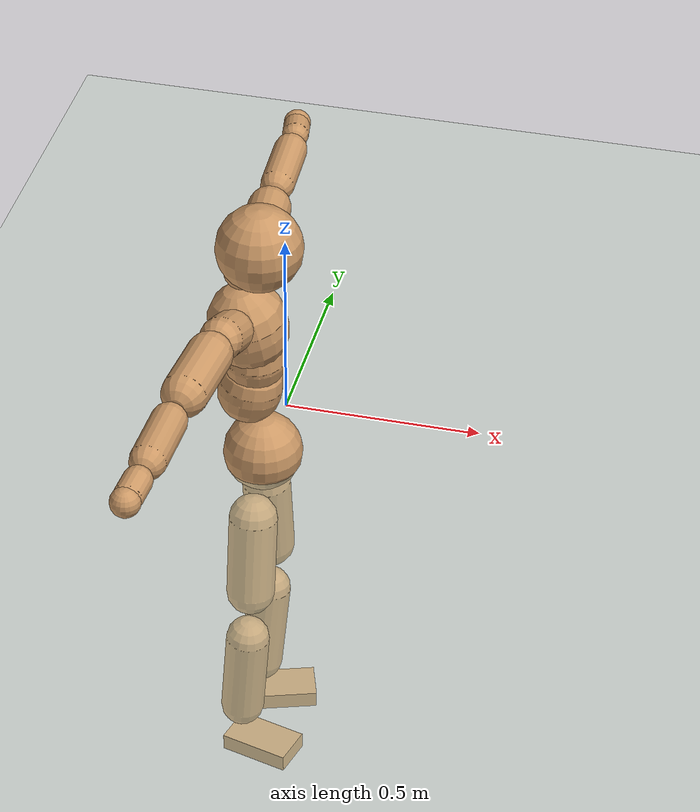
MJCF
<mujoco model="humanoid">
  <compiler coordinate="local"/>
  <default>
    <joint damping="0.0" armature="0.01" stiffness="0.0" limited="true"/>
    <geom conaffinity="1" condim="3" contype="7" margin="0.001" rgba="0.8 0.6 .4 1"/>
  </default>
  <asset>
    <texture type="skybox" builtin="gradient" rgb1=".4 .5 .6" rgb2="0 0 0" width="100" height="100"/>
    <texture builtin="flat" height="1278" mark="cross" markrgb="1 1 1" name="texgeom" random="0.01" rgb1="0.8 0.6 0.4" rgb2="0.8 0.6 0.4" type="cube" width="127"/>
    <texture builtin="checker" height="100" name="texplane" rgb1="0 0 0" rgb2="0.8 0.8 0.8" type="2d" width="100"/>
    <material name="MatPlane" reflectance="0.5" shininess="1" specular="1" texrepeat="60 60" texture="texplane"/>
    <material name="geom" texture="texgeom" texuniform="true"/>
  </asset>
  <worldbody>
    <light cutoff="100" diffuse="1 1 1" dir="-0 0 -1.3" directional="true" exponent="1" pos="0 0 1.3" specular=".1 .1 .1"/>
    <geom conaffinity="1" condim="3" name="floor" pos="0 0 0" rgba="0.8 0.9 0.8 1" size="100 100 .2" type="plane" material="MatPlane"/>
    <body name="Pelvis" pos="0.0002 -0.2359 0.0368">
      <freejoint name="Pelvis"/>
      <geom type="sphere" contype="1" conaffinity="1" density="500" size="0.0996" pos="0.0000 0.0000 0.0000" name="Pelvis"/>
      <body name="L_Hip" pos="-0.0123 0.0611 -0.0803">
        <joint name="L_Hip_x" type="hinge" pos="0 0 0" axis="1 0 0" stiffness="800" damping="80" armature="0.02" range="-180.0000 180.0000"/>
        <joint name="L_Hip_y" type="hinge" pos="0 0 0" axis="0 1 0" stiffness="800" damping="80" armature="0.02" range="-180.0000 180.0000"/>
        <joint name="L_Hip_z" type="hinge" pos="0 0 0" axis="0 0 1" stiffness="800" damping="80" armature="0.02" range="-180.0000 180.0000"/>
        <geom type="capsule" contype="1" conaffinity="1" density="500" fromto="0.0010 0.0080 -0.0738 0.0040 0.0318 -0.2954" size="0.0614" name="L_Hip"/>
        <body name="L_Knee" pos="0.005 0.0398 -0.3692">
          <joint name="L_Knee_x" type="hinge" pos="0 0 0" axis="1 0 0" stiffness="800" damping="80" armature="0.02" range="-180.0000 180.0000"/>
          <joint name="L_Knee_y" type="hinge" pos="0 0 0" axis="0 1 0" stiffness="800" damping="80" armature="0.02" range="-180.0000 180.0000"/>
          <joint name="L_Knee_z" type="hinge" pos="0 0 0" axis="0 0 1" stiffness="800" damping="80" armature="0.02" range="-180.0000 180.0000"/>
          <geom type="capsule" contype="1" conaffinity="1" density="500" fromto="-0.0076 -0.0030 -0.0827 -0.0303 -0.0122 -0.3307" size="0.0551" name="L_Knee"/>
          <body name="L_Ankle" pos="-0.0379 -0.0152 -0.4134">
            <joint name="L_Ankle_x" type="hinge" pos="0 0 0" axis="1 0 0" stiffness="800" damping="80" armature="0.02" range="-180.0000 180.0000"/>
            <joint name="L_Ankle_y" type="hinge" pos="0 0 0" axis="0 1 0" stiffness="800" damping="80" armature="0.02" range="-180.0000 180.0000"/>
            <joint name="L_Ankle_z" type="hinge" pos="0 0 0" axis="0 0 1" stiffness="800" damping="80" armature="0.02" range="-180.0000 180.0000"/>
            <geom type="box" contype="1" conaffinity="1" density="500" pos="0.0602 0.0201 -0.0293" size="0.0872 0.0514 0.0219" quat="0.9871 0.0000 0.0000 0.1601" name="L_Ankle"/>
            <body name="L_Toe" pos="0.1204 0.0401 -0.0585">
              <joint name="L_Toe_x" type="hinge" pos="0 0 0" axis="1 0 0" stiffness="500" damping="50" armature="0.02" range="-180.0000 180.0000"/>
              <joint name="L_Toe_y" type="hinge" pos="0 0 0" axis="0 1 0" stiffness="500" damping="50" armature="0.02" range="-180.0000 180.0000"/>
              <joint name="L_Toe_z" type="hinge" pos="0 0 0" axis="0 0 1" stiffness="500" damping="50" armature="0.02" range="-180.0000 180.0000"/>
              <geom type="box" contype="1" conaffinity="1" density="500" pos="0.0000 0.0000 0.0287" size="0.0011 0.0025 0.0011" quat="0.9863 0.0000 0.0000 0.1649" name="L_Toe"/>
            </body>
          </body>
        </body>
      </body>
      <body name="R_Hip" pos="-0.0076 -0.0629 -0.0887">
        <joint name="R_Hip_x" type="hinge" pos="0 0 0" axis="1 0 0" stiffness="800" damping="80" armature="0.02" range="-180.0000 180.0000"/>
        <joint name="R_Hip_y" type="hinge" pos="0 0 0" axis="0 1 0" stiffness="800" damping="80" armature="0.02" range="-180.0000 180.0000"/>
        <joint name="R_Hip_z" type="hinge" pos="0 0 0" axis="0 0 1" stiffness="800" damping="80" armature="0.02" range="-180.0000 180.0000"/>
        <geom type="capsule" contype="1" conaffinity="1" density="500" fromto="-0.0013 -0.0082 -0.0735 -0.0051 -0.0326 -0.2941" size="0.0611" name="R_Hip"/>
        <body name="R_Knee" pos="-0.0064 -0.0408 -0.3676">
          <joint name="R_Knee_x" type="hinge" pos="0 0 0" axis="1 0 0" stiffness="800" damping="80" armature="0.02" range="-180.0000 180.0000"/>
          <joint name="R_Knee_y" type="hinge" pos="0 0 0" axis="0 1 0" stiffness="800" damping="80" armature="0.02" range="-180.0000 180.0000"/>
          <joint name="R_Knee_z" type="hinge" pos="0 0 0" axis="0 0 1" stiffness="800" damping="80" armature="0.02" range="-180.0000 180.0000"/>
          <geom type="capsule" contype="1" conaffinity="1" density="500" fromto="-0.0070 0.0036 -0.0813 -0.0278 0.0144 -0.3253" size="0.0555" name="R_Knee"/>
          <body name="R_Ankle" pos="-0.0348 0.018 -0.4066">
            <joint name="R_Ankle_x" type="hinge" pos="0 0 0" axis="1 0 0" stiffness="800" damping="80" armature="0.02" range="-180.0000 180.0000"/>
            <joint name="R_Ankle_y" type="hinge" pos="0 0 0" axis="0 1 0" stiffness="800" damping="80" armature="0.02" range="-180.0000 180.0000"/>
            <joint name="R_Ankle_z" type="hinge" pos="0 0 0" axis="0 0 1" stiffness="800" damping="80" armature="0.02" range="-180.0000 180.0000"/>
            <geom type="box" contype="1" conaffinity="1" density="500" pos="0.0637 -0.0168 -0.0307" size="0.0894 0.0514 0.0222" quat="0.9918 0.0000 0.0000 -0.1282" name="R_Ankle"/>
            <body name="R_Toe" pos="0.1275 -0.0335 -0.0614">
              <joint name="R_Toe_x" type="hinge" pos="0 0 0" axis="1 0 0" stiffness="500" damping="50" armature="0.02" range="-180.0000 180.0000"/>
              <joint name="R_Toe_y" type="hinge" pos="0 0 0" axis="0 1 0" stiffness="500" damping="50" armature="0.02" range="-180.0000 180.0000"/>
              <joint name="R_Toe_z" type="hinge" pos="0 0 0" axis="0 0 1" stiffness="500" damping="50" armature="0.02" range="-180.0000 180.0000"/>
              <geom type="box" contype="1" conaffinity="1" density="500" pos="0.0000 0.0000 0.0308" size="0.0011 0.0026 0.0011" quat="0.9929 0.0000 0.0000 -0.1191" name="R_Toe"/>
            </body>
          </body>
        </body>
      </body>
      <body name="Torso" pos="-0.0437 0.0045 0.1229">
        <joint name="Torso_x" type="hinge" pos="0 0 0" axis="1 0 0" stiffness="1000" damping="100" armature="0.02" range="-180.0000 180.0000"/>
        <joint name="Torso_y" type="hinge" pos="0 0 0" axis="0 1 0" stiffness="1000" damping="100" armature="0.02" range="-180.0000 180.0000"/>
        <joint name="Torso_z" type="hinge" pos="0 0 0" axis="0 0 1" stiffness="1000" damping="100" armature="0.02" range="-180.0000 180.0000"/>
        <geom type="capsule" contype="1" conaffinity="1" density="500" fromto="0.0142 0.0024 0.0770 0.0095 0.0016 0.0513" size="0.079701" name="Torso"/>
        <body name="Spine" pos="0.0236 0.0041 0.1283">
          <joint name="Spine_x" type="hinge" pos="0 0 0" axis="1 0 0" stiffness="1000" damping="100" armature="0.02" range="-180.0000 180.0000"/>
          <joint name="Spine_y" type="hinge" pos="0 0 0" axis="0 1 0" stiffness="1000" damping="100" armature="0.02" range="-180.0000 180.0000"/>
          <joint name="Spine_z" type="hinge" pos="0 0 0" axis="0 0 1" stiffness="1000" damping="100" armature="0.02" range="-180.0000 180.0000"/>
          <geom type="capsule" contype="1" conaffinity="1" density="500" fromto="0.0013 -0.0018 0.0314 0.0009 -0.0012 0.0209" size="0.078399" name="Spine"/>
          <body name="Chest" pos="0.0022 -0.0031 0.0523">
            <joint name="Chest_x" type="hinge" pos="0 0 0" axis="1 0 0" stiffness="1000" damping="100" armature="0.02" range="-180.0000 180.0000"/>
            <joint name="Chest_y" type="hinge" pos="0 0 0" axis="0 1 0" stiffness="1000" damping="100" armature="0.02" range="-180.0000 180.0000"/>
            <joint name="Chest_z" type="hinge" pos="0 0 0" axis="0 0 1" stiffness="1000" damping="100" armature="0.02" range="-180.0000 180.0000"/>
            <geom type="capsule" contype="1" conaffinity="1" density="500" fromto="-0.0178 -0.0051 0.0883 -0.0119 -0.0034 0.0589" size="0.097929" name="Chest"/>
            <body name="Neck" pos="-0.0382 -0.0126 0.2132">
              <joint name="Neck_x" type="hinge" pos="0 0 0" axis="1 0 0" stiffness="500" damping="50" armature="0.02" range="-180.0000 180.0000"/>
              <joint name="Neck_y" type="hinge" pos="0 0 0" axis="0 1 0" stiffness="500" damping="50" armature="0.02" range="-180.0000 180.0000"/>
              <joint name="Neck_z" type="hinge" pos="0 0 0" axis="0 0 1" stiffness="500" damping="50" armature="0.02" range="-180.0000 180.0000"/>
              <geom type="capsule" contype="1" conaffinity="1" density="500" fromto="0.0107 0.0021 0.0176 0.0429 0.0083 0.0706" size="0.043152" name="Neck"/>
              <body name="Head" pos="0.0536 0.0104 0.0882">
                <joint name="Head_x" type="hinge" pos="0 0 0" axis="1 0 0" stiffness="500" damping="50" armature="0.02" range="-180.0000 180.0000"/>
                <joint name="Head_y" type="hinge" pos="0 0 0" axis="0 1 0" stiffness="500" damping="50" armature="0.02" range="-180.0000 180.0000"/>
                <joint name="Head_z" type="hinge" pos="0 0 0" axis="0 0 1" stiffness="500" damping="50" armature="0.02" range="-180.0000 180.0000"/>
                <geom type="sphere" contype="1" conaffinity="1" density="500" size="0.1071" pos="0.0000 0.0000 0.0000" name="Head"/>
              </body>
            </body>
            <body name="L_Thorax" pos="-0.0241 0.0698 0.1142">
              <joint name="L_Thorax_x" type="hinge" pos="0 0 0" axis="1 0 0" stiffness="500" damping="50" armature="0.02" range="-180.0000 180.0000"/>
              <joint name="L_Thorax_y" type="hinge" pos="0 0 0" axis="0 1 0" stiffness="500" damping="50" armature="0.02" range="-180.0000 180.0000"/>
              <joint name="L_Thorax_z" type="hinge" pos="0 0 0" axis="0 0 1" stiffness="500" damping="50" armature="0.02" range="-180.0000 180.0000"/>
              <geom type="capsule" contype="1" conaffinity="1" density="500" fromto="-0.0042 0.0244 0.0083 -0.0170 0.0975 0.0330" size="0.053" name="L_Thorax"/>
              <body name="L_Shoulder" pos="-0.0212 0.1218 0.0413">
                <joint name="L_Shoulder_x" type="hinge" pos="0 0 0" axis="1 0 0" stiffness="500" damping="50" armature="0.02" range="-720.0000 720.0000"/>
                <joint name="L_Shoulder_y" type="hinge" pos="0 0 0" axis="0 1 0" stiffness="500" damping="50" armature="0.02" range="-720.0000 720.0000"/>
                <joint name="L_Shoulder_z" type="hinge" pos="0 0 0" axis="0 0 1" stiffness="500" damping="50" armature="0.02" range="-720.0000 720.0000"/>
                <geom type="capsule" contype="1" conaffinity="1" density="500" fromto="-0.0044 0.0498 -0.0024 -0.0177 0.1993 -0.0096" size="0.0549" name="L_Shoulder"/>
                <body name="L_Elbow" pos="-0.0222 0.2491 -0.012">
                  <joint name="L_Elbow_x" type="hinge" pos="0 0 0" axis="1 0 0" stiffness="500" damping="50" armature="0.02" range="-720.0000 720.0000"/>
                  <joint name="L_Elbow_y" type="hinge" pos="0 0 0" axis="0 1 0" stiffness="500" damping="50" armature="0.02" range="-720.0000 720.0000"/>
                  <joint name="L_Elbow_z" type="hinge" pos="0 0 0" axis="0 0 1" stiffness="500" damping="50" armature="0.02" range="-720.0000 720.0000"/>
                  <geom type="capsule" contype="1" conaffinity="1" density="500" fromto="-0.0016 0.0519 0.0024 -0.0063 0.2075 0.0095" size="0.0429" name="L_Elbow"/>
                  <body name="L_Wrist" pos="-0.0078 0.2594 0.0119">
                    <joint name="L_Wrist_x" type="hinge" pos="0 0 0" axis="1 0 0" stiffness="300" damping="30" armature="0.02" range="-180.0000 180.0000"/>
                    <joint name="L_Wrist_y" type="hinge" pos="0 0 0" axis="0 1 0" stiffness="300" damping="30" armature="0.02" range="-180.0000 180.0000"/>
                    <joint name="L_Wrist_z" type="hinge" pos="0 0 0" axis="0 0 1" stiffness="300" damping="30" armature="0.02" range="-180.0000 180.0000"/>
                    <geom type="capsule" contype="1" conaffinity="1" density="500" fromto="-0.0030 0.0171 -0.0021 -0.0122 0.0685 -0.0083" size="0.034" name="L_Wrist"/>
                    <body name="L_Hand" pos="-0.0152 0.0856 -0.0104">
                      <joint name="L_Hand_x" type="hinge" pos="0 0 0" axis="1 0 0" stiffness="300" damping="30" armature="0.02" range="-180.0000 180.0000"/>
                      <joint name="L_Hand_y" type="hinge" pos="0 0 0" axis="0 1 0" stiffness="300" damping="30" armature="0.02" range="-180.0000 180.0000"/>
                      <joint name="L_Hand_z" type="hinge" pos="0 0 0" axis="0 0 1" stiffness="300" damping="30" armature="0.02" range="-180.0000 180.0000"/>
                      <geom type="sphere" contype="1" conaffinity="1" density="500" size="0.0352" pos="0.0000 0.0000 0.0000" name="L_Hand"/>
                    </body>
                  </body>
                </body>
              </body>
            </body>
            <body name="R_Thorax" pos="-0.0269 -0.0826 0.1142">
              <joint name="R_Thorax_x" type="hinge" pos="0 0 0" axis="1 0 0" stiffness="500" damping="50" armature="0.02" range="-180.0000 180.0000"/>
              <joint name="R_Thorax_y" type="hinge" pos="0 0 0" axis="0 1 0" stiffness="500" damping="50" armature="0.02" range="-180.0000 180.0000"/>
              <joint name="R_Thorax_z" type="hinge" pos="0 0 0" axis="0 0 1" stiffness="500" damping="50" armature="0.02" range="-180.0000 180.0000"/>
              <geom type="capsule" contype="1" conaffinity="1" density="500" fromto="-0.0020 -0.0226 0.0086 -0.0080 -0.0905 0.0346" size="0.0535" name="R_Thorax"/>
              <body name="R_Shoulder" pos="-0.01 -0.1132 0.0432">
                <joint name="R_Shoulder_x" type="hinge" pos="0 0 0" axis="1 0 0" stiffness="500" damping="50" armature="0.02" range="-720.0000 720.0000"/>
                <joint name="R_Shoulder_y" type="hinge" pos="0 0 0" axis="0 1 0" stiffness="500" damping="50" armature="0.02" range="-720.0000 720.0000"/>
                <joint name="R_Shoulder_z" type="hinge" pos="0 0 0" axis="0 0 1" stiffness="500" damping="50" armature="0.02" range="-720.0000 720.0000"/>
                <geom type="capsule" contype="1" conaffinity="1" density="500" fromto="-0.0060 -0.0514 -0.0019 -0.0239 -0.2056 -0.0078" size="0.0561" name="R_Shoulder"/>
                <body name="R_Elbow" pos="-0.0299 -0.257 -0.0097">
                  <joint name="R_Elbow_x" type="hinge" pos="0 0 0" axis="1 0 0" stiffness="500" damping="50" armature="0.02" range="-720.0000 720.0000"/>
                  <joint name="R_Elbow_y" type="hinge" pos="0 0 0" axis="0 1 0" stiffness="500" damping="50" armature="0.02" range="-720.0000 720.0000"/>
                  <joint name="R_Elbow_z" type="hinge" pos="0 0 0" axis="0 0 1" stiffness="500" damping="50" armature="0.02" range="-720.0000 720.0000"/>
                  <geom type="capsule" contype="1" conaffinity="1" density="500" fromto="-0.0014 -0.0529 0.0015 -0.0055 -0.2116 0.0061" size="0.0441" name="R_Elbow"/>
                  <body name="R_Wrist" pos="-0.0068 -0.2644 0.0076">
                    <joint name="R_Wrist_x" type="hinge" pos="0 0 0" axis="1 0 0" stiffness="300" damping="30" armature="0.02" range="-180.0000 180.0000"/>
                    <joint name="R_Wrist_y" type="hinge" pos="0 0 0" axis="0 1 0" stiffness="300" damping="30" armature="0.02" range="-180.0000 180.0000"/>
                    <joint name="R_Wrist_z" type="hinge" pos="0 0 0" axis="0 0 1" stiffness="300" damping="30" armature="0.02" range="-180.0000 180.0000"/>
                    <geom type="capsule" contype="1" conaffinity="1" density="500" fromto="-0.0020 -0.0178 -0.0018 -0.0079 -0.0714 -0.0070" size="0.0354" name="R_Wrist"/>
                    <body name="R_Hand" pos="-0.0099 -0.0892 -0.0088">
                      <joint name="R_Hand_x" type="hinge" pos="0 0 0" axis="1 0 0" stiffness="300" damping="30" armature="0.02" range="-180.0000 180.0000"/>
                      <joint name="R_Hand_y" type="hinge" pos="0 0 0" axis="0 1 0" stiffness="300" damping="30" armature="0.02" range="-180.0000 180.0000"/>
                      <joint name="R_Hand_z" type="hinge" pos="0 0 0" axis="0 0 1" stiffness="300" damping="30" armature="0.02" range="-180.0000 180.0000"/>
                      <geom type="sphere" contype="1" conaffinity="1" density="500" size="0.0364" pos="0.0000 0.0000 0.0000" name="R_Hand"/>
                    </body>
                  </body>
                </body>
              </body>
            </body>
          </body>
        </body>
      </body>
    </body>
  </worldbody>
  <actuator>
    <motor name="L_Hip_x" joint="L_Hip_x" gear="500"/>
    <motor name="L_Hip_y" joint="L_Hip_y" gear="500"/>
    <motor name="L_Hip_z" joint="L_Hip_z" gear="500"/>
    <motor name="L_Knee_x" joint="L_Knee_x" gear="500"/>
    <motor name="L_Knee_y" joint="L_Knee_y" gear="500"/>
    <motor name="L_Knee_z" joint="L_Knee_z" gear="500"/>
    <motor name="L_Ankle_x" joint="L_Ankle_x" gear="500"/>
    <motor name="L_Ankle_y" joint="L_Ankle_y" gear="500"/>
    <motor name="L_Ankle_z" joint="L_Ankle_z" gear="500"/>
    <motor name="L_Toe_x" joint="L_Toe_x" gear="500"/>
    <motor name="L_Toe_y" joint="L_Toe_y" gear="500"/>
    <motor name="L_Toe_z" joint="L_Toe_z" gear="500"/>
    <motor name="R_Hip_x" joint="R_Hip_x" gear="500"/>
    <motor name="R_Hip_y" joint="R_Hip_y" gear="500"/>
    <motor name="R_Hip_z" joint="R_Hip_z" gear="500"/>
    <motor name="R_Knee_x" joint="R_Knee_x" gear="500"/>
    <motor name="R_Knee_y" joint="R_Knee_y" gear="500"/>
    <motor name="R_Knee_z" joint="R_Knee_z" gear="500"/>
    <motor name="R_Ankle_x" joint="R_Ankle_x" gear="500"/>
    <motor name="R_Ankle_y" joint="R_Ankle_y" gear="500"/>
    <motor name="R_Ankle_z" joint="R_Ankle_z" gear="500"/>
    <motor name="R_Toe_x" joint="R_Toe_x" gear="500"/>
    <motor name="R_Toe_y" joint="R_Toe_y" gear="500"/>
    <motor name="R_Toe_z" joint="R_Toe_z" gear="500"/>
    <motor name="Torso_x" joint="Torso_x" gear="500"/>
    <motor name="Torso_y" joint="Torso_y" gear="500"/>
    <motor name="Torso_z" joint="Torso_z" gear="500"/>
    <motor name="Spine_x" joint="Spine_x" gear="500"/>
    <motor name="Spine_y" joint="Spine_y" gear="500"/>
    <motor name="Spine_z" joint="Spine_z" gear="500"/>
    <motor name="Chest_x" joint="Chest_x" gear="500"/>
    <motor name="Chest_y" joint="Chest_y" gear="500"/>
    <motor name="Chest_z" joint="Chest_z" gear="500"/>
    <motor name="Neck_x" joint="Neck_x" gear="500"/>
    <motor name="Neck_y" joint="Neck_y" gear="500"/>
    <motor name="Neck_z" joint="Neck_z" gear="500"/>
    <motor name="Head_x" joint="Head_x" gear="500"/>
    <motor name="Head_y" joint="Head_y" gear="500"/>
    <motor name="Head_z" joint="Head_z" gear="500"/>
    <motor name="L_Thorax_x" joint="L_Thorax_x" gear="500"/>
    <motor name="L_Thorax_y" joint="L_Thorax_y" gear="500"/>
    <motor name="L_Thorax_z" joint="L_Thorax_z" gear="500"/>
    <motor name="L_Shoulder_x" joint="L_Shoulder_x" gear="500"/>
    <motor name="L_Shoulder_y" joint="L_Shoulder_y" gear="500"/>
    <motor name="L_Shoulder_z" joint="L_Shoulder_z" gear="500"/>
    <motor name="L_Elbow_x" joint="L_Elbow_x" gear="500"/>
    <motor name="L_Elbow_y" joint="L_Elbow_y" gear="500"/>
    <motor name="L_Elbow_z" joint="L_Elbow_z" gear="500"/>
    <motor name="L_Wrist_x" joint="L_Wrist_x" gear="500"/>
    <motor name="L_Wrist_y" joint="L_Wrist_y" gear="500"/>
    <motor name="L_Wrist_z" joint="L_Wrist_z" gear="500"/>
    <motor name="L_Hand_x" joint="L_Hand_x" gear="500"/>
    <motor name="L_Hand_y" joint="L_Hand_y" gear="500"/>
    <motor name="L_Hand_z" joint="L_Hand_z" gear="500"/>
    <motor name="R_Thorax_x" joint="R_Thorax_x" gear="500"/>
    <motor name="R_Thorax_y" joint="R_Thorax_y" gear="500"/>
    <motor name="R_Thorax_z" joint="R_Thorax_z" gear="500"/>
    <motor name="R_Shoulder_x" joint="R_Shoulder_x" gear="500"/>
    <motor name="R_Shoulder_y" joint="R_Shoulder_y" gear="500"/>
    <motor name="R_Shoulder_z" joint="R_Shoulder_z" gear="500"/>
    <motor name="R_Elbow_x" joint="R_Elbow_x" gear="500"/>
    <motor name="R_Elbow_y" joint="R_Elbow_y" gear="500"/>
    <motor name="R_Elbow_z" joint="R_Elbow_z" gear="500"/>
    <motor name="R_Wrist_x" joint="R_Wrist_x" gear="500"/>
    <motor name="R_Wrist_y" joint="R_Wrist_y" gear="500"/>
    <motor name="R_Wrist_z" joint="R_Wrist_z" gear="500"/>
    <motor name="R_Hand_x" joint="R_Hand_x" gear="500"/>
    <motor name="R_Hand_y" joint="R_Hand_y" gear="500"/>
    <motor name="R_Hand_z" joint="R_Hand_z" gear="500"/>
  </actuator>
  <contact>
    <exclude body1="Torso" body2="Chest"/>
    <exclude body1="Head" body2="Chest"/>
    <exclude body1="R_Knee" body2="R_Toe"/>
    <exclude body1="R_Knee" body2="L_Ankle"/>
    <exclude body1="R_Knee" body2="L_Toe"/>
    <exclude body1="L_Knee" body2="L_Toe"/>
    <exclude body1="L_Knee" body2="R_Ankle"/>
    <exclude body1="L_Knee" body2="R_Toe"/>
    <exclude body1="L_Shoulder" body2="Chest"/>
    <exclude body1="R_Shoulder" body2="Chest"/>
  </contact>
  <sensor/>
  <size njmax="700" nconmax="700"/>
</mujoco>
